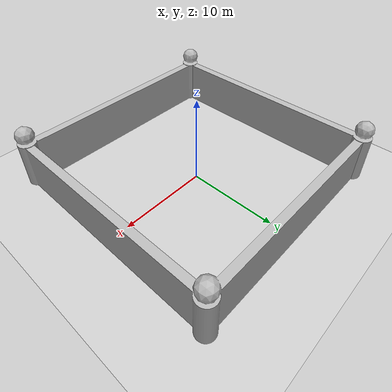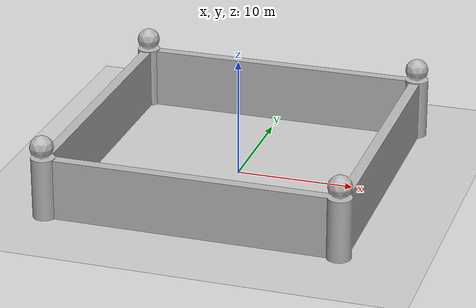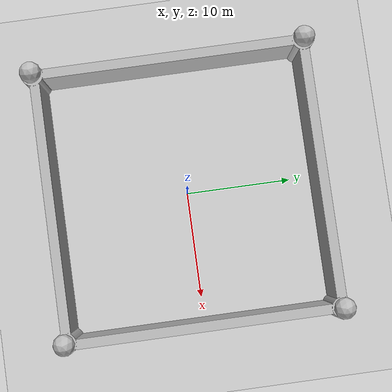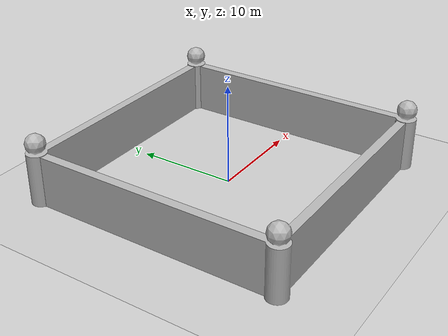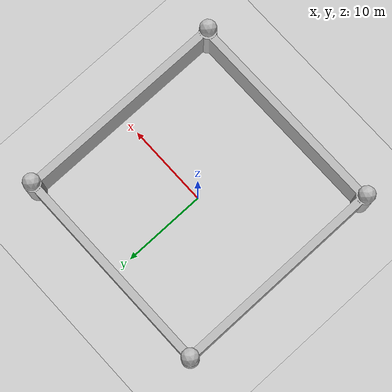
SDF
<?xml version="1.0"?>
<sdf version='1.9'>
  <world name='empty'>
    <physics name="1ms" type="ode">
      <max_step_size>0.001</max_step_size>
      <real_time_factor>1</real_time_factor>
      <real_time_update_rate>1000</real_time_update_rate>
    </physics>

    <plugin name='gz::sim::systems::Physics' filename='gz-sim-physics-system'/>
    <plugin name='gz::sim::systems::UserCommands' filename='gz-sim-user-commands-system'/>
    <plugin name='gz::sim::systems::SceneBroadcaster' filename='gz-sim-scene-broadcaster-system'/>
    <plugin name='gz::sim::systems::Contact' filename='gz-sim-contact-system'/>

    <plugin
      filename="gz-sim-sensors-system"
      name="gz::sim::systems::Sensors">
      <render_engine>ogre2</render_engine>
    </plugin>
    <plugin filename="gz-sim-imu-system"
            name="gz::sim::systems::Imu">
    </plugin>

    <gravity>0 0 -9.8</gravity>
    <magnetic_field>6e-06 2.3e-05 -4.2e-05</magnetic_field>
    <atmosphere type='adiabatic'/>
    <scene>
      <ambient>0.4 0.4 0.4 1</ambient>
      <background>0.7 0.7 0.7 1</background>
      <shadows>true</shadows>
    </scene>
    <model name='ground_plane'>
      <static>true</static>
      <link name='link'>
        <collision name='collision'>
          <geometry>
            <plane>
              <normal>0 0 1</normal>
              <size>100 100</size>
            </plane>
          </geometry>
          <surface>
            <friction>
              <ode/>
            </friction>
            <bounce/>
            <contact/>
          </surface>
        </collision>
        <visual name='visual'>
          <geometry>
            <plane>
              <normal>0 0 1</normal>
              <size>100 100</size>
            </plane>
          </geometry>
          <material>
            <ambient>0.8 0.8 0.8 1</ambient>
            <diffuse>0.8 0.8 0.8 1</diffuse>
            <specular>0.8 0.8 0.8 1</specular>
          </material>
        </visual>
        <pose>0 0 0 0 -0 0</pose>
        <inertial>
          <pose>0 0 0 0 -0 0</pose>
          <mass>1</mass>
          <inertia>
            <ixx>1</ixx>
            <ixy>0</ixy>
            <ixz>0</ixz>
            <iyy>1</iyy>
            <iyz>0</iyz>
            <izz>1</izz>
          </inertia>
        </inertial>
        <enable_wind>false</enable_wind>
      </link>
      <pose>0 0 0 0 -0 0</pose>
      <self_collide>false</self_collide>
    </model>
    <light name='sun' type='directional'>
      <pose>0 0 10 0 -0 0</pose>
      <cast_shadows>true</cast_shadows>
      <intensity>1</intensity>
      <direction>-0.5 0.1 -0.9</direction>
      <diffuse>0.8 0.8 0.8 1</diffuse>
      <specular>0.2 0.2 0.2 1</specular>
      <attenuation>
        <range>1000</range>
        <linear>0.01</linear>
        <constant>0.90000000000000002</constant>
        <quadratic>0.001</quadratic>
      </attenuation>
      <spot>
        <inner_angle>0</inner_angle>
        <outer_angle>0</outer_angle>
        <falloff>0</falloff>
      </spot>
    </light>

    <include>
      <uri>model://velmobil_gym_mini</uri>
      <pose>0 0 0 0 0 0</pose>
    </include>
  </world>
</sdf>

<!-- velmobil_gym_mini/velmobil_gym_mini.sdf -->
<sdf version="1.9">
  <model name="velmobil_gym_mini">
    <static>true</static>
    <link name="link">
      <visual name="visual">
        <geometry>
          <mesh>
            <uri>velmobil_gym_mini.obj</uri>
          </mesh>
        </geometry>
      </visual>
      <collision name="collision">
        <geometry>
          <mesh>
            <uri>velmobil_gym_mini.obj</uri>
          </mesh>
        </geometry>
      </collision>
    </link>
  </model>
</sdf>
